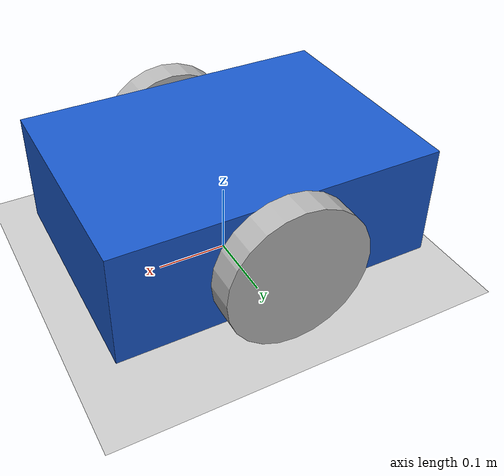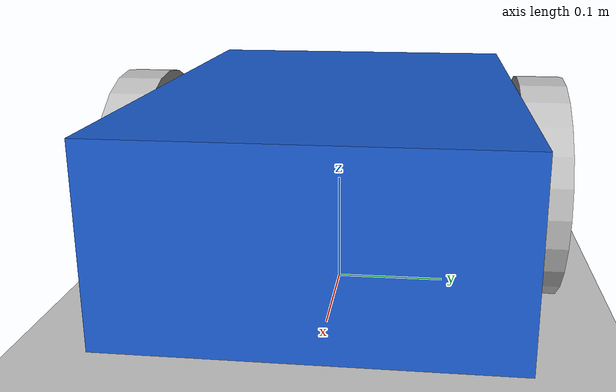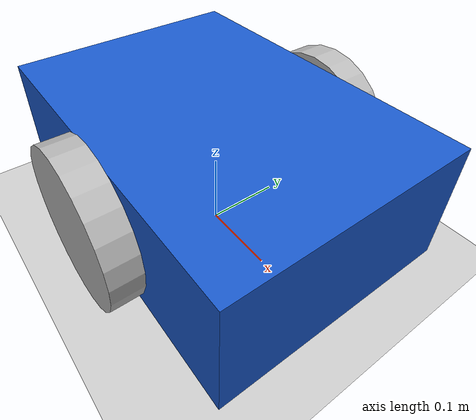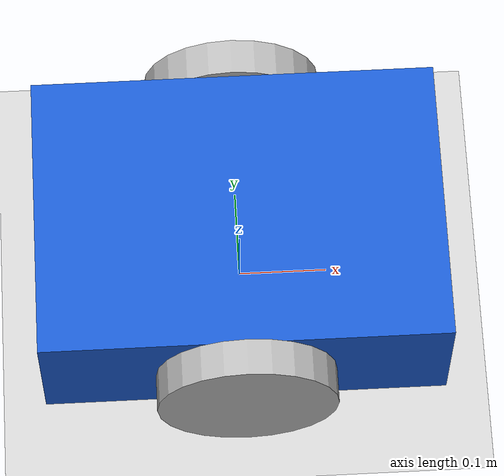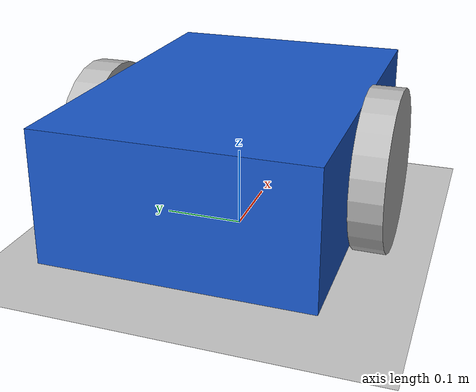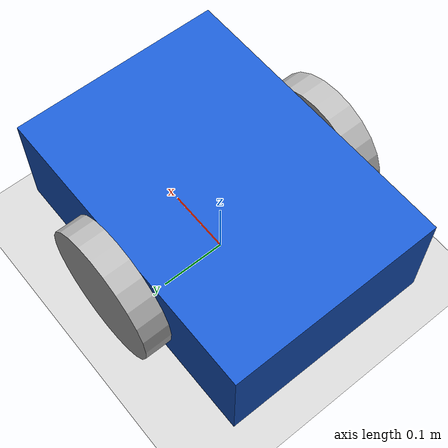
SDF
<?xml version="1.0"?>
<sdf version="1.9">
  <world name="benchmark_world">
    <physics name="1ms" type="ignored">
      <max_step_size>0.001</max_step_size><real_time_factor>1.0</real_time_factor>
    </physics>
    <plugin filename="gz-sim-physics-system" name="gz::sim::systems::Physics"/>
    <plugin filename="gz-sim-user-commands-system" name="gz::sim::systems::UserCommands"/>
    <plugin filename="gz-sim-scene-broadcaster-system" name="gz::sim::systems::SceneBroadcaster"/>
    <light type="directional" name="sun">
      <cast_shadows>true</cast_shadows><pose>0 0 10 0 0 0</pose>
      <diffuse>0.8 0.8 0.8 1</diffuse><specular>0.2 0.2 0.2 1</specular>
      <direction>-0.5 0.1 -0.9</direction>
    </light>
    <model name="ground_plane">
      <static>true</static>
      <link name="link">
        <collision name="collision"><geometry><plane><normal>0 0 1</normal><size>100 100</size></plane></geometry></collision>
        <visual name="visual"><geometry><plane><normal>0 0 1</normal><size>100 100</size></plane></geometry><material><ambient>0.8 0.8 0.8 1</ambient></material></visual>
      </link>
    </model>
    <include><uri>model://differential_drive</uri></include>
  </world>
</sdf>

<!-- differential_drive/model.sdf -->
<sdf version="1.9">
  <model name="differential_drive">
    <pose>0 0 0.11 0 0 0</pose>
    <link name="base_link">
      <inertial><mass>8.0</mass><inertia><ixx>0.15</ixx><iyy>0.20</iyy><izz>0.25</izz></inertia></inertial>
      <collision name="body_collision"><geometry><box><size>0.45 0.32 0.16</size></box></geometry></collision>
      <visual name="body_visual"><geometry><box><size>0.45 0.32 0.16</size></box></geometry><material><ambient>0.1 0.35 0.8 1</ambient></material></visual>
    </link>
    <link name="left_wheel">
      <pose relative_to="base_link">0 0.18 -0.01 1.570796 0 0</pose>
      <inertial><mass>0.5</mass><inertia><ixx>0.002</ixx><iyy>0.002</iyy><izz>0.002</izz></inertia></inertial>
      <collision name="collision"><geometry><cylinder><radius>0.10</radius><length>0.04</length></cylinder></geometry><surface><friction><ode><mu>1.0</mu><mu2>1.0</mu2></ode></friction></surface></collision>
      <visual name="visual"><geometry><cylinder><radius>0.10</radius><length>0.04</length></cylinder></geometry></visual>
    </link>
    <link name="right_wheel">
      <pose relative_to="base_link">0 -0.18 -0.01 1.570796 0 0</pose>
      <inertial><mass>0.5</mass><inertia><ixx>0.002</ixx><iyy>0.002</iyy><izz>0.002</izz></inertia></inertial>
      <collision name="collision"><geometry><cylinder><radius>0.10</radius><length>0.04</length></cylinder></geometry><surface><friction><ode><mu>1.0</mu><mu2>1.0</mu2></ode></friction></surface></collision>
      <visual name="visual"><geometry><cylinder><radius>0.10</radius><length>0.04</length></cylinder></geometry></visual>
    </link>
    <link name="caster">
      <pose relative_to="base_link">-0.16 0 -0.07 0 0 0</pose>
      <collision name="collision"><geometry><sphere><radius>0.04</radius></sphere></geometry><surface><friction><ode><mu>0.0</mu><mu2>0.0</mu2></ode></friction></surface></collision>
      <visual name="visual"><geometry><sphere><radius>0.04</radius></sphere></geometry></visual>
    </link>
    <joint name="left_wheel_joint" type="revolute">
      <parent>base_link</parent><child>left_wheel</child><axis><xyz>0 1 0</xyz></axis>
    </joint>
    <joint name="right_wheel_joint" type="revolute">
      <parent>base_link</parent><child>right_wheel</child><axis><xyz>0 1 0</xyz></axis>
    </joint>
    <joint name="caster_joint" type="fixed"><parent>base_link</parent><child>caster</child></joint>
    <plugin filename="gz-sim-diff-drive-system" name="gz::sim::systems::DiffDrive">
      <left_joint>left_wheel_joint</left_joint><right_joint>right_wheel_joint</right_joint>
      <wheel_separation>0.36</wheel_separation><wheel_radius>0.10</wheel_radius>
      <topic>/cmd_vel</topic><odom_topic>/odom</odom_topic>
      <frame_id>odom</frame_id><child_frame_id>base_link</child_frame_id>
      <odom_publish_frequency>50</odom_publish_frequency>
    </plugin>
  </model>
</sdf>
